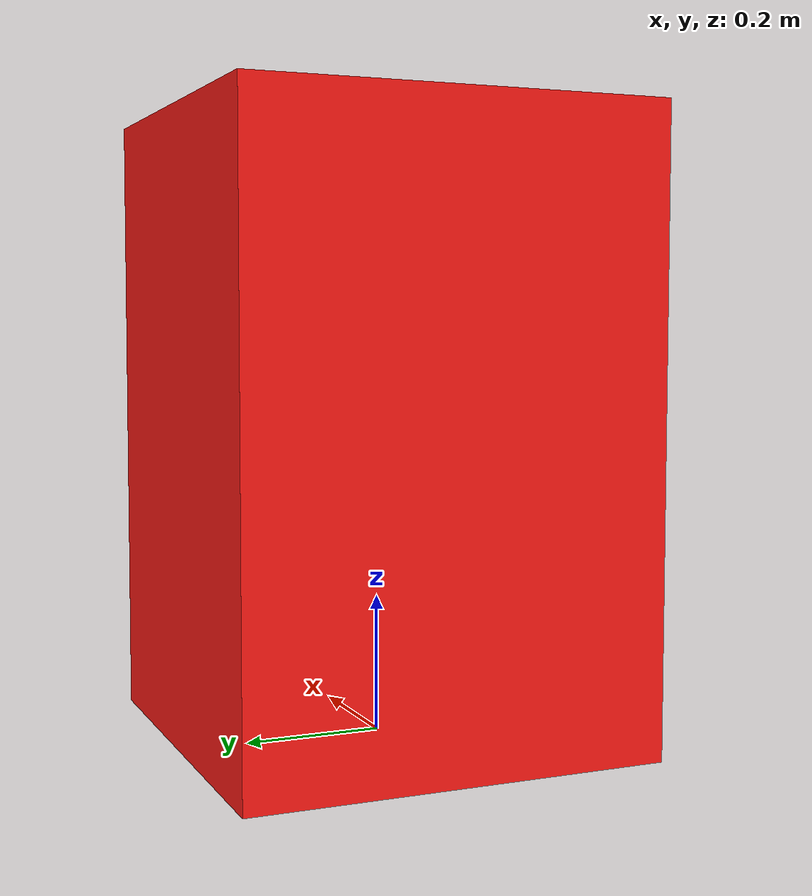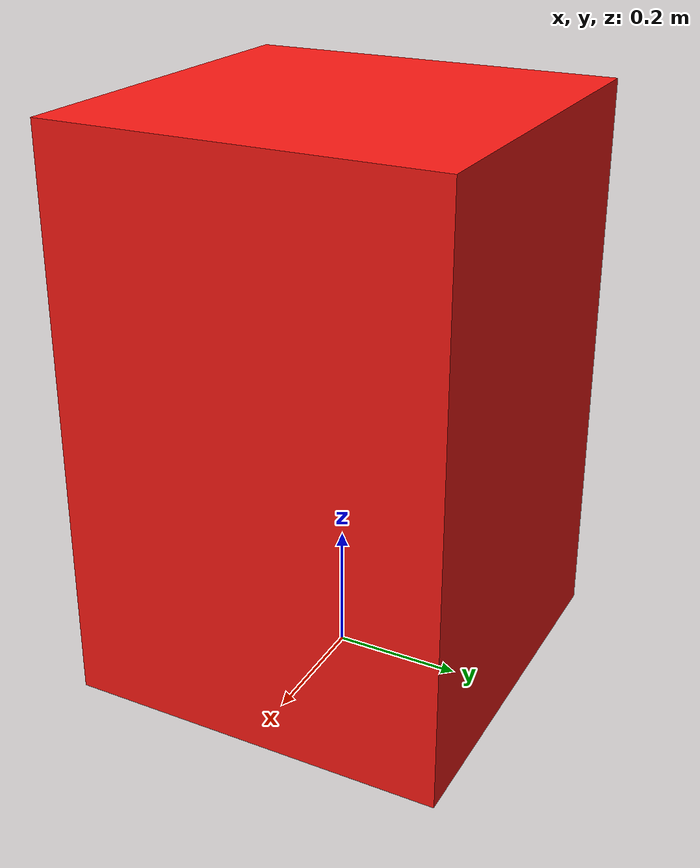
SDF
<?xml version="1.0"?>
<sdf version="1.6">
  <!-- A real, collidable dynamic proxy. Its pose is controlled by
       dynamic_obstacle_controller.py through /gazebo/set_entity_state. -->
  <model name="oracle_dynamic_obstacle">
    <static>false</static>
    <allow_auto_disable>false</allow_auto_disable>
    <self_collide>false</self_collide>
    <link name="link">
      <kinematic>true</kinematic>
      <gravity>false</gravity>
      <inertial>
        <pose>0 0 0.45 0 0 0</pose>
        <mass>8.0</mass>
        <inertia>
          <ixx>0.510</ixx>
          <iyy>0.510</iyy>
          <izz>0.480</izz>
          <ixy>0</ixy>
          <ixz>0</ixz>
          <iyz>0</iyz>
        </inertia>
      </inertial>
      <collision name="collision">
        <pose>0 0 0.45 0 0 0</pose>
        <geometry>
          <box><size>0.60 0.60 0.90</size></box>
        </geometry>
        <surface>
          <contact>
            <collide_without_contact>false</collide_without_contact>
            <collide_without_contact_bitmask>1</collide_without_contact_bitmask>
          </contact>
        </surface>
      </collision>
      <visual name="visual">
        <pose>0 0 0.45 0 0 0</pose>
        <geometry>
          <box><size>0.60 0.60 0.90</size></box>
        </geometry>
        <material>
          <ambient>0.92 0.05 0.05 1</ambient>
          <diffuse>0.98 0.10 0.08 1</diffuse>
          <specular>0.25 0.25 0.25 1</specular>
        </material>
      </visual>
    </link>
  </model>
</sdf>
